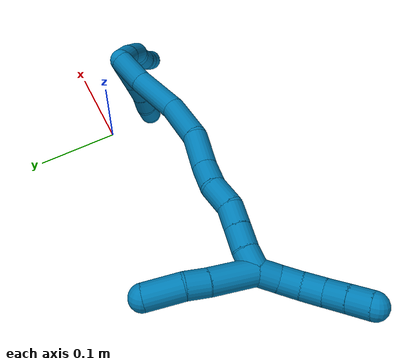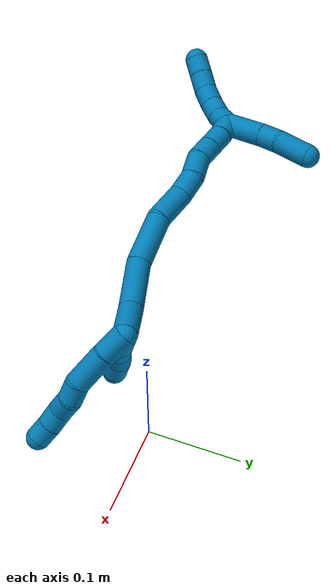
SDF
<sdf version="1.7">
 <world name="default">
  <model name="photoneo_s_sensor">
   <static>1</static>
   <pose>0 0 2 1.57079 1.57079 3.14159</pose>
   <link name="link">
    <inertial><mass>0.1</mass></inertial>
    <sensor name="sensor" type="depth">
     <update_rate>30</update_rate>
     <camera>
      <horizontal_fov>1.22</horizontal_fov>
      <image><width>1920</width><height>1200</height><format>B8G8R8</format></image>
      <clip><near>0.1</near><far>4</far></clip>
      <depth_camera><output>points</output></depth_camera>
     </camera>
     <plugin name="camera_plugin" filename="libgazebo_ros_depth_camera.so">
      <baseline>0.2</baseline>
      <alwaysOn>1</alwaysOn>
      <updateRate>0.0</updateRate>
      <cameraName>camera_ir</cameraName>
      <imageTopicName>/camera/color/image_raw</imageTopicName>
      <cameraInfoTopicName>/camera/color/camera_info</cameraInfoTopicName>
      <depthImageTopicName>/camera/depth/image_raw</depthImageTopicName>
      <depthImageCameraInfoTopicName>/camera/depth/camera_info</depthImageCameraInfoTopicName>
      <pointCloudTopicName>/camera/depth/points</pointCloudTopicName>
      <frameName>fr_optical</frameName>
      <pointCloudCutoff>0.1</pointCloudCutoff>
      <pointCloudCutoffMax>2.0</pointCloudCutoffMax>
      <distortionK1>0</distortionK1>
      <distortionK2>0</distortionK2>
      <distortionK3>0</distortionK3>
      <distortionT1>0</distortionT1>
      <distortionT2>0</distortionT2>
      <CxPrime>0</CxPrime>
      <Cx>0</Cx>
      <Cy>0</Cy>
      <focalLength>0</focalLength>
      <hackBaseline>0</hackBaseline>
     </plugin>
    </sensor>
   </link>
  </model>
  <model name="bin">
   <static>1</static>
   <link name="bottom">
    <collision name="collision-bottom">
     <pose>0 0 -0.01 0 -0 0</pose>
     <geometry><box><size>0.8 0.6 0.02</size></box></geometry>
     <surface>
      <friction><ode><mu>100</mu><mu2>100</mu2></ode></friction>
      <contact><collide_bitmask>65535</collide_bitmask></contact>
     </surface>
    </collision>
   </link>
   <link name="west_wall">
    <collision name="collision-west_wall">
     <pose>-0.41 0 0.1 0 -0 0</pose>
     <geometry><box><size>0.02 0.6 0.2</size></box></geometry>
     <surface>
      <friction><ode><mu>100</mu><mu2>100</mu2></ode></friction>
      <contact><collide_bitmask>65535</collide_bitmask></contact>
     </surface>
    </collision>
   </link>
   <link name="east_wall">
    <collision name="collision-east_wall">
     <pose>0.41 0 0.1 0 -0 0</pose>
     <geometry><box><size>0.02 0.6 0.2</size></box></geometry>
     <surface>
      <friction><ode><mu>100</mu><mu2>100</mu2></ode></friction>
      <contact><collide_bitmask>65535</collide_bitmask></contact>
     </surface>
    </collision>
   </link>
   <link name="south_wall">
    <collision name="collision-south_wall">
     <pose>0 -0.31 0.1 0 -0 0</pose>
     <geometry><box><size>0.8 0.02 0.2</size></box></geometry>
     <surface>
      <friction><ode><mu>100</mu><mu2>100</mu2></ode></friction>
      <contact><collide_bitmask>65535</collide_bitmask></contact>
     </surface>
    </collision>
   </link>
   <link name="north_wall">
    <collision name="collision-north_wall">
     <pose>0 0.31 0.1 0 -0 0</pose>
     <geometry><box><size>0.8 0.02 0.2</size></box></geometry>
     <surface>
      <friction><ode><mu>100</mu><mu2>100</mu2></ode></friction>
      <contact><collide_bitmask>65535</collide_bitmask></contact>
     </surface>
    </collision>
   </link>
  </model>
  <model name="9">
   <static>0</static>
   <link name="9">
    <collision name="collision-cylinder-e_1_2_8">
     <pose>0.012933 0.006372 -0.001248 -1.76422 1.10552 -1.28632</pose>
     <geometry><cylinder><radius>0.0125</radius><length>0.028944</length></cylinder></geometry>
     <surface>
      <friction><ode><mu>1.16</mu><mu2>1.16</mu2><slip1>0</slip1><slip2>0</slip2></ode></friction>
      <contact><ode><kp>1e+06</kp><kd>1</kd><max_vel>0</max_vel><min_depth>0.001</min_depth></ode></contact>
     </surface>
    </collision>
    <visual name="visual-cylinder-e_1_2_8">
     <pose>0.012933 0.006372 -0.001248 -1.76422 1.10552 -1.28632</pose>
     <geometry><cylinder><radius>0.0125</radius><length>0.028944</length></cylinder></geometry>
     <material><ambient>0 0.490196 0.709804 1</ambient></material>
    </visual>
    <collision name="collision-cylinder-e_2_8_9">
     <pose>0.04386 0.021778 -0.002117 -1.52882 1.10512 -1.06797</pose>
     <geometry><cylinder><radius>0.0125</radius><length>0.040275</length></cylinder></geometry>
     <surface>
      <friction><ode><mu>1.16</mu><mu2>1.16</mu2><slip1>0</slip1><slip2>0</slip2></ode></friction>
      <contact><ode><kp>1e+06</kp><kd>1</kd><max_vel>0</max_vel><min_depth>0.001</min_depth></ode></contact>
     </surface>
    </collision>
    <visual name="visual-cylinder-e_2_8_9">
     <pose>0.04386 0.021778 -0.002117 -1.52882 1.10512 -1.06797</pose>
     <geometry><cylinder><radius>0.0125</radius><length>0.040275</length></cylinder></geometry>
     <material><ambient>0 0.490196 0.709804 1</ambient></material>
    </visual>
    <collision name="collision-cylinder-e_3_9_10">
     <pose>0.071222 0.033883 0.001243 -0.800276 1.14234 -0.530781</pose>
     <geometry><cylinder><radius>0.0125</radius><length>0.020599</length></cylinder></geometry>
     <surface>
      <friction><ode><mu>1.16</mu><mu2>1.16</mu2><slip1>0</slip1><slip2>0</slip2></ode></friction>
      <contact><ode><kp>1e+06</kp><kd>1</kd><max_vel>0</max_vel><min_depth>0.001</min_depth></ode></contact>
     </surface>
    </collision>
    <visual name="visual-cylinder-e_3_9_10">
     <pose>0.071222 0.033883 0.001243 -0.800276 1.14234 -0.530781</pose>
     <geometry><cylinder><radius>0.0125</radius><length>0.020599</length></cylinder></geometry>
     <material><ambient>0 0.490196 0.709804 1</ambient></material>
    </visual>
    <collision name="collision-cylinder-e_4_10_11">
     <pose>0.087993 0.042816 0.007704 -1.03495 0.826482 -0.489194</pose>
     <geometry><cylinder><radius>0.0125</radius><length>0.020127</length></cylinder></geometry>
     <surface>
      <friction><ode><mu>1.16</mu><mu2>1.16</mu2><slip1>0</slip1><slip2>0</slip2></ode></friction>
      <contact><ode><kp>1e+06</kp><kd>1</kd><max_vel>0</max_vel><min_depth>0.001</min_depth></ode></contact>
     </surface>
    </collision>
    <visual name="visual-cylinder-e_4_10_11">
     <pose>0.087993 0.042816 0.007704 -1.03495 0.826482 -0.489194</pose>
     <geometry><cylinder><radius>0.0125</radius><length>0.020127</length></cylinder></geometry>
     <material><ambient>0 0.490196 0.709804 1</ambient></material>
    </visual>
    <collision name="collision-cylinder-e_5_11_12">
     <pose>0.104441 0.052766 0.012507 -1.25812 1.12739 -0.862233</pose>
     <geometry><cylinder><radius>0.0125</radius><length>0.020029</length></cylinder></geometry>
     <surface>
      <friction><ode><mu>1.16</mu><mu2>1.16</mu2><slip1>0</slip1><slip2>0</slip2></ode></friction>
      <contact><ode><kp>1e+06</kp><kd>1</kd><max_vel>0</max_vel><min_depth>0.001</min_depth></ode></contact>
     </surface>
    </collision>
    <visual name="visual-cylinder-e_5_11_12">
     <pose>0.104441 0.052766 0.012507 -1.25812 1.12739 -0.862233</pose>
     <geometry><cylinder><radius>0.0125</radius><length>0.020029</length></cylinder></geometry>
     <material><ambient>0 0.490196 0.709804 1</ambient></material>
    </visual>
    <collision name="collision-cylinder-e_6_12_6">
     <pose>0.122338 0.061452 0.014713 -1.3807 1.08423 -0.923228</pose>
     <geometry><cylinder><radius>0.0125</radius><length>0.020026</length></cylinder></geometry>
     <surface>
      <friction><ode><mu>1.16</mu><mu2>1.16</mu2><slip1>0</slip1><slip2>0</slip2></ode></friction>
      <contact><ode><kp>1e+06</kp><kd>1</kd><max_vel>0</max_vel><min_depth>0.001</min_depth></ode></contact>
     </surface>
    </collision>
    <visual name="visual-cylinder-e_6_12_6">
     <pose>0.122338 0.061452 0.014713 -1.3807 1.08423 -0.923228</pose>
     <geometry><cylinder><radius>0.0125</radius><length>0.020026</length></cylinder></geometry>
     <material><ambient>0 0.490196 0.709804 1</ambient></material>
    </visual>
    <collision name="collision-cylinder-e_1_2_13">
     <pose>0.007209 0.010288 0.013577 -0.648458 0.400367 -0.136175</pose>
     <geometry><cylinder><radius>0.0125</radius><length>0.036995</length></cylinder></geometry>
     <surface>
      <friction><ode><mu>1.16</mu><mu2>1.16</mu2><slip1>0</slip1><slip2>0</slip2></ode></friction>
      <contact><ode><kp>1e+06</kp><kd>1</kd><max_vel>0</max_vel><min_depth>0.001</min_depth></ode></contact>
     </surface>
    </collision>
    <visual name="visual-cylinder-e_1_2_13">
     <pose>0.007209 0.010288 0.013577 -0.648458 0.400367 -0.136175</pose>
     <geometry><cylinder><radius>0.0125</radius><length>0.036995</length></cylinder></geometry>
     <material><ambient>0 0.490196 0.709804 1</ambient></material>
    </visual>
    <collision name="collision-cylinder-e_2_13_14">
     <pose>0.018777 0.02666 0.035545 -0.627297 0.398073 -0.130663</pose>
     <geometry><cylinder><radius>0.0125</radius><length>0.022487</length></cylinder></geometry>
     <surface>
      <friction><ode><mu>1.16</mu><mu2>1.16</mu2><slip1>0</slip1><slip2>0</slip2></ode></friction>
      <contact><ode><kp>1e+06</kp><kd>1</kd><max_vel>0</max_vel><min_depth>0.001</min_depth></ode></contact>
     </surface>
    </collision>
    <visual name="visual-cylinder-e_2_13_14">
     <pose>0.018777 0.02666 0.035545 -0.627297 0.398073 -0.130663</pose>
     <geometry><cylinder><radius>0.0125</radius><length>0.022487</length></cylinder></geometry>
     <material><ambient>0 0.490196 0.709804 1</ambient></material>
    </visual>
    <collision name="collision-cylinder-e_3_14_15">
     <pose>0.027983 0.036701 0.051775 -0.467515 0.504362 -0.122552</pose>
     <geometry><cylinder><radius>0.0125</radius><length>0.020061</length></cylinder></geometry>
     <surface>
      <friction><ode><mu>1.16</mu><mu2>1.16</mu2><slip1>0</slip1><slip2>0</slip2></ode></friction>
      <contact><ode><kp>1e+06</kp><kd>1</kd><max_vel>0</max_vel><min_depth>0.001</min_depth></ode></contact>
     </surface>
    </collision>
    <visual name="visual-cylinder-e_3_14_15">
     <pose>0.027983 0.036701 0.051775 -0.467515 0.504362 -0.122552</pose>
     <geometry><cylinder><radius>0.0125</radius><length>0.020061</length></cylinder></geometry>
     <material><ambient>0 0.490196 0.709804 1</ambient></material>
    </visual>
    <collision name="collision-cylinder-e_4_15_5">
     <pose>0.039583 0.045335 0.06571 -0.654404 0.721105 -0.254548</pose>
     <geometry><cylinder><radius>0.0125</radius><length>0.020458</length></cylinder></geometry>
     <surface>
      <friction><ode><mu>1.16</mu><mu2>1.16</mu2><slip1>0</slip1><slip2>0</slip2></ode></friction>
      <contact><ode><kp>1e+06</kp><kd>1</kd><max_vel>0</max_vel><min_depth>0.001</min_depth></ode></contact>
     </surface>
    </collision>
    <visual name="visual-cylinder-e_4_15_5">
     <pose>0.039583 0.045335 0.06571 -0.654404 0.721105 -0.254548</pose>
     <geometry><cylinder><radius>0.0125</radius><length>0.020458</length></cylinder></geometry>
     <material><ambient>0 0.490196 0.709804 1</ambient></material>
    </visual>
    <collision name="collision-cylinder-e_1_2_16">
     <pose>-0.011307 0.009761 0.009789 -0.783999 -0.685566 0.292944</pose>
     <geometry><cylinder><radius>0.0125</radius><length>0.035717</length></cylinder></geometry>
     <surface>
      <friction><ode><mu>1.16</mu><mu2>1.16</mu2><slip1>0</slip1><slip2>0</slip2></ode></friction>
      <contact><ode><kp>1e+06</kp><kd>1</kd><max_vel>0</max_vel><min_depth>0.001</min_depth></ode></contact>
     </surface>
    </collision>
    <visual name="visual-cylinder-e_1_2_16">
     <pose>-0.011307 0.009761 0.009789 -0.783999 -0.685566 0.292944</pose>
     <geometry><cylinder><radius>0.0125</radius><length>0.035717</length></cylinder></geometry>
     <material><ambient>0 0.490196 0.709804 1</ambient></material>
    </visual>
    <collision name="collision-cylinder-e_2_16_17">
     <pose>-0.044575 0.033417 0.029948 -0.929599 -0.902488 0.476747</pose>
     <geometry><cylinder><radius>0.0125</radius><length>0.055963</length></cylinder></geometry>
     <surface>
      <friction><ode><mu>1.16</mu><mu2>1.16</mu2><slip1>0</slip1><slip2>0</slip2></ode></friction>
      <contact><ode><kp>1e+06</kp><kd>1</kd><max_vel>0</max_vel><min_depth>0.001</min_depth></ode></contact>
     </surface>
    </collision>
    <visual name="visual-cylinder-e_2_16_17">
     <pose>-0.044575 0.033417 0.029948 -0.929599 -0.902488 0.476747</pose>
     <geometry><cylinder><radius>0.0125</radius><length>0.055963</length></cylinder></geometry>
     <material><ambient>0 0.490196 0.709804 1</ambient></material>
    </visual>
    <collision name="collision-cylinder-e_3_17_18">
     <pose>-0.091221 0.052674 0.049131 -0.546685 -1.17501 0.369158</pose>
     <geometry><cylinder><radius>0.0125</radius><length>0.053505</length></cylinder></geometry>
     <surface>
      <friction><ode><mu>1.16</mu><mu2>1.16</mu2><slip1>0</slip1><slip2>0</slip2></ode></friction>
      <contact><ode><kp>1e+06</kp><kd>1</kd><max_vel>0</max_vel><min_depth>0.001</min_depth></ode></contact>
     </surface>
    </collision>
    <visual name="visual-cylinder-e_3_17_18">
     <pose>-0.091221 0.052674 0.049131 -0.546685 -1.17501 0.369158</pose>
     <geometry><cylinder><radius>0.0125</radius><length>0.053505</length></cylinder></geometry>
     <material><ambient>0 0.490196 0.709804 1</ambient></material>
    </visual>
    <collision name="collision-cylinder-e_4_18_19">
     <pose>-0.131473 0.059195 0.069126 -0.103231 -0.945238 0.052813</pose>
     <geometry><cylinder><radius>0.0125</radius><length>0.038408</length></cylinder></geometry>
     <surface>
      <friction><ode><mu>1.16</mu><mu2>1.16</mu2><slip1>0</slip1><slip2>0</slip2></ode></friction>
      <contact><ode><kp>1e+06</kp><kd>1</kd><max_vel>0</max_vel><min_depth>0.001</min_depth></ode></contact>
     </surface>
    </collision>
    <visual name="visual-cylinder-e_4_18_19">
     <pose>-0.131473 0.059195 0.069126 -0.103231 -0.945238 0.052813</pose>
     <geometry><cylinder><radius>0.0125</radius><length>0.038408</length></cylinder></geometry>
     <material><ambient>0 0.490196 0.709804 1</ambient></material>
    </visual>
    <collision name="collision-cylinder-e_5_19_20">
     <pose>-0.158253 0.061341 0.085992 -0.172148 -1.09582 0.105214</pose>
     <geometry><cylinder><radius>0.0125</radius><length>0.025217</length></cylinder></geometry>
     <surface>
      <friction><ode><mu>1.16</mu><mu2>1.16</mu2><slip1>0</slip1><slip2>0</slip2></ode></friction>
      <contact><ode><kp>1e+06</kp><kd>1</kd><max_vel>0</max_vel><min_depth>0.001</min_depth></ode></contact>
     </surface>
    </collision>
    <visual name="visual-cylinder-e_5_19_20">
     <pose>-0.158253 0.061341 0.085992 -0.172148 -1.09582 0.105214</pose>
     <geometry><cylinder><radius>0.0125</radius><length>0.025217</length></cylinder></geometry>
     <material><ambient>0 0.490196 0.709804 1</ambient></material>
    </visual>
    <collision name="collision-cylinder-e_6_20_21">
     <pose>-0.180529 0.067275 0.09725 -0.72546 -0.977871 0.398471</pose>
     <geometry><cylinder><radius>0.0125</radius><length>0.026681</length></cylinder></geometry>
     <surface>
      <friction><ode><mu>1.16</mu><mu2>1.16</mu2><slip1>0</slip1><slip2>0</slip2></ode></friction>
      <contact><ode><kp>1e+06</kp><kd>1</kd><max_vel>0</max_vel><min_depth>0.001</min_depth></ode></contact>
     </surface>
    </collision>
    <visual name="visual-cylinder-e_6_20_21">
     <pose>-0.180529 0.067275 0.09725 -0.72546 -0.977871 0.398471</pose>
     <geometry><cylinder><radius>0.0125</radius><length>0.026681</length></cylinder></geometry>
     <material><ambient>0 0.490196 0.709804 1</ambient></material>
    </visual>
    <collision name="collision-cylinder-e_7_21_22">
     <pose>-0.200114 0.073416 0.109662 -0.173089 -0.887455 0.082436</pose>
     <geometry><cylinder><radius>0.0125</radius><length>0.021978</length></cylinder></geometry>
     <surface>
      <friction><ode><mu>1.16</mu><mu2>1.16</mu2><slip1>0</slip1><slip2>0</slip2></ode></friction>
      <contact><ode><kp>1e+06</kp><kd>1</kd><max_vel>0</max_vel><min_depth>0.001</min_depth></ode></contact>
     </surface>
    </collision>
    <visual name="visual-cylinder-e_7_21_22">
     <pose>-0.200114 0.073416 0.109662 -0.173089 -0.887455 0.082436</pose>
     <geometry><cylinder><radius>0.0125</radius><length>0.021978</length></cylinder></geometry>
     <material><ambient>0 0.490196 0.709804 1</ambient></material>
    </visual>
    <collision name="collision-cylinder-e_8_22_23">
     <pose>-0.217071 0.075803 0.12341 -0.170762 -0.877017 0.080233</pose>
     <geometry><cylinder><radius>0.0125</radius><length>0.021942</length></cylinder></geometry>
     <surface>
      <friction><ode><mu>1.16</mu><mu2>1.16</mu2><slip1>0</slip1><slip2>0</slip2></ode></friction>
      <contact><ode><kp>1e+06</kp><kd>1</kd><max_vel>0</max_vel><min_depth>0.001</min_depth></ode></contact>
     </surface>
    </collision>
    <visual name="visual-cylinder-e_8_22_23">
     <pose>-0.217071 0.075803 0.12341 -0.170762 -0.877017 0.080233</pose>
     <geometry><cylinder><radius>0.0125</radius><length>0.021942</length></cylinder></geometry>
     <material><ambient>0 0.490196 0.709804 1</ambient></material>
    </visual>
    <collision name="collision-cylinder-e_9_23_1">
     <pose>-0.233267 0.079558 0.136583 -0.388566 -0.854045 0.178589</pose>
     <geometry><cylinder><radius>0.0125</radius><length>0.020589</length></cylinder></geometry>
     <surface>
      <friction><ode><mu>1.16</mu><mu2>1.16</mu2><slip1>0</slip1><slip2>0</slip2></ode></friction>
      <contact><ode><kp>1e+06</kp><kd>1</kd><max_vel>0</max_vel><min_depth>0.001</min_depth></ode></contact>
     </surface>
    </collision>
    <visual name="visual-cylinder-e_9_23_1">
     <pose>-0.233267 0.079558 0.136583 -0.388566 -0.854045 0.178589</pose>
     <geometry><cylinder><radius>0.0125</radius><length>0.020589</length></cylinder></geometry>
     <material><ambient>0 0.490196 0.709804 1</ambient></material>
    </visual>
    <collision name="collision-cylinder-e_1_1_24">
     <pose>-0.244319 0.091307 0.145025 -1.33743 -0.335288 0.265864</pose>
     <geometry><cylinder><radius>0.0125</radius><length>0.02</length></cylinder></geometry>
     <surface>
      <friction><ode><mu>1.16</mu><mu2>1.16</mu2><slip1>0</slip1><slip2>0</slip2></ode></friction>
      <contact><ode><kp>1e+06</kp><kd>1</kd><max_vel>0</max_vel><min_depth>0.001</min_depth></ode></contact>
     </surface>
    </collision>
    <visual name="visual-cylinder-e_1_1_24">
     <pose>-0.244319 0.091307 0.145025 -1.33743 -0.335288 0.265864</pose>
     <geometry><cylinder><radius>0.0125</radius><length>0.02</length></cylinder></geometry>
     <material><ambient>0 0.490196 0.709804 1</ambient></material>
    </visual>
    <collision name="collision-cylinder-e_2_24_25">
     <pose>-0.253109 0.108797 0.148117 -1.46188 -0.582312 0.524979</pose>
     <geometry><cylinder><radius>0.0125</radius><length>0.02</length></cylinder></geometry>
     <surface>
      <friction><ode><mu>1.16</mu><mu2>1.16</mu2><slip1>0</slip1><slip2>0</slip2></ode></friction>
      <contact><ode><kp>1e+06</kp><kd>1</kd><max_vel>0</max_vel><min_depth>0.001</min_depth></ode></contact>
     </surface>
    </collision>
    <visual name="visual-cylinder-e_2_24_25">
     <pose>-0.253109 0.108797 0.148117 -1.46188 -0.582312 0.524979</pose>
     <geometry><cylinder><radius>0.0125</radius><length>0.02</length></cylinder></geometry>
     <material><ambient>0 0.490196 0.709804 1</ambient></material>
    </visual>
    <collision name="collision-cylinder-e_3_25_26">
     <pose>-0.265077 0.124725 0.149038 -1.56902 -0.703523 0.702378</pose>
     <geometry><cylinder><radius>0.0125</radius><length>0.02</length></cylinder></geometry>
     <surface>
      <friction><ode><mu>1.16</mu><mu2>1.16</mu2><slip1>0</slip1><slip2>0</slip2></ode></friction>
      <contact><ode><kp>1e+06</kp><kd>1</kd><max_vel>0</max_vel><min_depth>0.001</min_depth></ode></contact>
     </surface>
    </collision>
    <visual name="visual-cylinder-e_3_25_26">
     <pose>-0.265077 0.124725 0.149038 -1.56902 -0.703523 0.702378</pose>
     <geometry><cylinder><radius>0.0125</radius><length>0.02</length></cylinder></geometry>
     <material><ambient>0 0.490196 0.709804 1</ambient></material>
    </visual>
    <collision name="collision-cylinder-e_4_26_27">
     <pose>-0.279259 0.138615 0.147925 -1.74876 -0.880791 1.02643</pose>
     <geometry><cylinder><radius>0.0125</radius><length>0.02</length></cylinder></geometry>
     <surface>
      <friction><ode><mu>1.16</mu><mu2>1.16</mu2><slip1>0</slip1><slip2>0</slip2></ode></friction>
      <contact><ode><kp>1e+06</kp><kd>1</kd><max_vel>0</max_vel><min_depth>0.001</min_depth></ode></contact>
     </surface>
    </collision>
    <visual name="visual-cylinder-e_4_26_27">
     <pose>-0.279259 0.138615 0.147925 -1.74876 -0.880791 1.02643</pose>
     <geometry><cylinder><radius>0.0125</radius><length>0.02</length></cylinder></geometry>
     <material><ambient>0 0.490196 0.709804 1</ambient></material>
    </visual>
    <collision name="collision-cylinder-e_5_27_4">
     <pose>-0.29463 0.151236 0.145823 -1.72305 -0.872315 0.995013</pose>
     <geometry><cylinder><radius>0.0125</radius><length>0.02</length></cylinder></geometry>
     <surface>
      <friction><ode><mu>1.16</mu><mu2>1.16</mu2><slip1>0</slip1><slip2>0</slip2></ode></friction>
      <contact><ode><kp>1e+06</kp><kd>1</kd><max_vel>0</max_vel><min_depth>0.001</min_depth></ode></contact>
     </surface>
    </collision>
    <visual name="visual-cylinder-e_5_27_4">
     <pose>-0.29463 0.151236 0.145823 -1.72305 -0.872315 0.995013</pose>
     <geometry><cylinder><radius>0.0125</radius><length>0.02</length></cylinder></geometry>
     <material><ambient>0 0.490196 0.709804 1</ambient></material>
    </visual>
    <collision name="collision-cylinder-e_1_1_28">
     <pose>-0.241184 0.060832 0.146502 1.40048 -0.007183 -0.006053</pose>
     <geometry><cylinder><radius>0.0125</radius><length>0.043202</length></cylinder></geometry>
     <surface>
      <friction><ode><mu>1.16</mu><mu2>1.16</mu2><slip1>0</slip1><slip2>0</slip2></ode></friction>
      <contact><ode><kp>1e+06</kp><kd>1</kd><max_vel>0</max_vel><min_depth>0.001</min_depth></ode></contact>
     </surface>
    </collision>
    <visual name="visual-cylinder-e_1_1_28">
     <pose>-0.241184 0.060832 0.146502 1.40048 -0.007183 -0.006053</pose>
     <geometry><cylinder><radius>0.0125</radius><length>0.043202</length></cylinder></geometry>
     <material><ambient>0 0.490196 0.709804 1</ambient></material>
    </visual>
    <collision name="collision-cylinder-e_2_28_29">
     <pose>-0.240676 0.02926 0.151623 1.42985 0.063767 0.055362</pose>
     <geometry><cylinder><radius>0.0125</radius><length>0.020816</length></cylinder></geometry>
     <surface>
      <friction><ode><mu>1.16</mu><mu2>1.16</mu2><slip1>0</slip1><slip2>0</slip2></ode></friction>
      <contact><ode><kp>1e+06</kp><kd>1</kd><max_vel>0</max_vel><min_depth>0.001</min_depth></ode></contact>
     </surface>
    </collision>
    <visual name="visual-cylinder-e_2_28_29">
     <pose>-0.240676 0.02926 0.151623 1.42985 0.063767 0.055362</pose>
     <geometry><cylinder><radius>0.0125</radius><length>0.020816</length></cylinder></geometry>
     <material><ambient>0 0.490196 0.709804 1</ambient></material>
    </visual>
    <collision name="collision-cylinder-e_3_29_3">
     <pose>-0.237782 0.001971 0.158517 1.26141 0.124266 0.090793</pose>
     <geometry><cylinder><radius>0.0125</radius><length>0.035982</length></cylinder></geometry>
     <surface>
      <friction><ode><mu>1.16</mu><mu2>1.16</mu2><slip1>0</slip1><slip2>0</slip2></ode></friction>
      <contact><ode><kp>1e+06</kp><kd>1</kd><max_vel>0</max_vel><min_depth>0.001</min_depth></ode></contact>
     </surface>
    </collision>
    <visual name="visual-cylinder-e_3_29_3">
     <pose>-0.237782 0.001971 0.158517 1.26141 0.124266 0.090793</pose>
     <geometry><cylinder><radius>0.0125</radius><length>0.035982</length></cylinder></geometry>
     <material><ambient>0 0.490196 0.709804 1</ambient></material>
    </visual>
    <collision name="collision-sphere-3">
     <pose>-0.235553 -0.015033 0.163953 0 -0 0</pose>
     <geometry><sphere><radius>0.0125</radius></sphere></geometry>
     <surface>
      <friction><ode><mu>1.16</mu><mu2>1.16</mu2><slip1>0</slip1><slip2>0</slip2></ode></friction>
      <contact><ode><kp>1e+06</kp><kd>1</kd><max_vel>0</max_vel><min_depth>0.001</min_depth></ode></contact>
     </surface>
    </collision>
    <visual name="visual-sphere-3">
     <pose>-0.235553 -0.015033 0.163953 0 -0 0</pose>
     <geometry><sphere><radius>0.0125</radius></sphere></geometry>
     <material><ambient>0 0.490196 0.709804 1</ambient></material>
    </visual>
    <collision name="collision-sphere-29">
     <pose>-0.240012 0.018976 0.153082 0 -0 0</pose>
     <geometry><sphere><radius>0.0125</radius></sphere></geometry>
     <surface>
      <friction><ode><mu>1.16</mu><mu2>1.16</mu2><slip1>0</slip1><slip2>0</slip2></ode></friction>
      <contact><ode><kp>1e+06</kp><kd>1</kd><max_vel>0</max_vel><min_depth>0.001</min_depth></ode></contact>
     </surface>
    </collision>
    <visual name="visual-sphere-29">
     <pose>-0.240012 0.018976 0.153082 0 -0 0</pose>
     <geometry><sphere><radius>0.0125</radius></sphere></geometry>
     <material><ambient>0 0.490196 0.709804 1</ambient></material>
    </visual>
    <collision name="collision-sphere-28">
     <pose>-0.241339 0.039543 0.150163 0 -0 0</pose>
     <geometry><sphere><radius>0.0125</radius></sphere></geometry>
     <surface>
      <friction><ode><mu>1.16</mu><mu2>1.16</mu2><slip1>0</slip1><slip2>0</slip2></ode></friction>
      <contact><ode><kp>1e+06</kp><kd>1</kd><max_vel>0</max_vel><min_depth>0.001</min_depth></ode></contact>
     </surface>
    </collision>
    <visual name="visual-sphere-28">
     <pose>-0.241339 0.039543 0.150163 0 -0 0</pose>
     <geometry><sphere><radius>0.0125</radius></sphere></geometry>
     <material><ambient>0 0.490196 0.709804 1</ambient></material>
    </visual>
    <collision name="collision-sphere-4">
     <pose>-0.302288 0.157592 0.144847 0 -0 0</pose>
     <geometry><sphere><radius>0.0125</radius></sphere></geometry>
     <surface>
      <friction><ode><mu>1.16</mu><mu2>1.16</mu2><slip1>0</slip1><slip2>0</slip2></ode></friction>
      <contact><ode><kp>1e+06</kp><kd>1</kd><max_vel>0</max_vel><min_depth>0.001</min_depth></ode></contact>
     </surface>
    </collision>
    <visual name="visual-sphere-4">
     <pose>-0.302288 0.157592 0.144847 0 -0 0</pose>
     <geometry><sphere><radius>0.0125</radius></sphere></geometry>
     <material><ambient>0 0.490196 0.709804 1</ambient></material>
    </visual>
    <collision name="collision-sphere-27">
     <pose>-0.286971 0.14488 0.146798 0 -0 0</pose>
     <geometry><sphere><radius>0.0125</radius></sphere></geometry>
     <surface>
      <friction><ode><mu>1.16</mu><mu2>1.16</mu2><slip1>0</slip1><slip2>0</slip2></ode></friction>
      <contact><ode><kp>1e+06</kp><kd>1</kd><max_vel>0</max_vel><min_depth>0.001</min_depth></ode></contact>
     </surface>
    </collision>
    <visual name="visual-sphere-27">
     <pose>-0.286971 0.14488 0.146798 0 -0 0</pose>
     <geometry><sphere><radius>0.0125</radius></sphere></geometry>
     <material><ambient>0 0.490196 0.709804 1</ambient></material>
    </visual>
    <collision name="collision-sphere-26">
     <pose>-0.271547 0.13235 0.149052 0 -0 0</pose>
     <geometry><sphere><radius>0.0125</radius></sphere></geometry>
     <surface>
      <friction><ode><mu>1.16</mu><mu2>1.16</mu2><slip1>0</slip1><slip2>0</slip2></ode></friction>
      <contact><ode><kp>1e+06</kp><kd>1</kd><max_vel>0</max_vel><min_depth>0.001</min_depth></ode></contact>
     </surface>
    </collision>
    <visual name="visual-sphere-26">
     <pose>-0.271547 0.13235 0.149052 0 -0 0</pose>
     <geometry><sphere><radius>0.0125</radius></sphere></geometry>
     <material><ambient>0 0.490196 0.709804 1</ambient></material>
    </visual>
    <collision name="collision-sphere-25">
     <pose>-0.258608 0.117099 0.149025 0 -0 0</pose>
     <geometry><sphere><radius>0.0125</radius></sphere></geometry>
     <surface>
      <friction><ode><mu>1.16</mu><mu2>1.16</mu2><slip1>0</slip1><slip2>0</slip2></ode></friction>
      <contact><ode><kp>1e+06</kp><kd>1</kd><max_vel>0</max_vel><min_depth>0.001</min_depth></ode></contact>
     </surface>
    </collision>
    <visual name="visual-sphere-25">
     <pose>-0.258608 0.117099 0.149025 0 -0 0</pose>
     <geometry><sphere><radius>0.0125</radius></sphere></geometry>
     <material><ambient>0 0.490196 0.709804 1</ambient></material>
    </visual>
    <collision name="collision-sphere-24">
     <pose>-0.247609 0.100494 0.147209 0 -0 0</pose>
     <geometry><sphere><radius>0.0125</radius></sphere></geometry>
     <surface>
      <friction><ode><mu>1.16</mu><mu2>1.16</mu2><slip1>0</slip1><slip2>0</slip2></ode></friction>
      <contact><ode><kp>1e+06</kp><kd>1</kd><max_vel>0</max_vel><min_depth>0.001</min_depth></ode></contact>
     </surface>
    </collision>
    <visual name="visual-sphere-24">
     <pose>-0.247609 0.100494 0.147209 0 -0 0</pose>
     <geometry><sphere><radius>0.0125</radius></sphere></geometry>
     <material><ambient>0 0.490196 0.709804 1</ambient></material>
    </visual>
    <collision name="collision-sphere-1">
     <pose>-0.241028 0.08212 0.142841 0 -0 0</pose>
     <geometry><sphere><radius>0.0125</radius></sphere></geometry>
     <surface>
      <friction><ode><mu>1.16</mu><mu2>1.16</mu2><slip1>0</slip1><slip2>0</slip2></ode></friction>
      <contact><ode><kp>1e+06</kp><kd>1</kd><max_vel>0</max_vel><min_depth>0.001</min_depth></ode></contact>
     </surface>
    </collision>
    <visual name="visual-sphere-1">
     <pose>-0.241028 0.08212 0.142841 0 -0 0</pose>
     <geometry><sphere><radius>0.0125</radius></sphere></geometry>
     <material><ambient>0 0.490196 0.709804 1</ambient></material>
    </visual>
    <collision name="collision-sphere-23">
     <pose>-0.225505 0.076995 0.130324 0 -0 0</pose>
     <geometry><sphere><radius>0.0125</radius></sphere></geometry>
     <surface>
      <friction><ode><mu>1.16</mu><mu2>1.16</mu2><slip1>0</slip1><slip2>0</slip2></ode></friction>
      <contact><ode><kp>1e+06</kp><kd>1</kd><max_vel>0</max_vel><min_depth>0.001</min_depth></ode></contact>
     </surface>
    </collision>
    <visual name="visual-sphere-23">
     <pose>-0.225505 0.076995 0.130324 0 -0 0</pose>
     <geometry><sphere><radius>0.0125</radius></sphere></geometry>
     <material><ambient>0 0.490196 0.709804 1</ambient></material>
    </visual>
    <collision name="collision-sphere-22">
     <pose>-0.208636 0.074611 0.116497 0 -0 0</pose>
     <geometry><sphere><radius>0.0125</radius></sphere></geometry>
     <surface>
      <friction><ode><mu>1.16</mu><mu2>1.16</mu2><slip1>0</slip1><slip2>0</slip2></ode></friction>
      <contact><ode><kp>1e+06</kp><kd>1</kd><max_vel>0</max_vel><min_depth>0.001</min_depth></ode></contact>
     </surface>
    </collision>
    <visual name="visual-sphere-22">
     <pose>-0.208636 0.074611 0.116497 0 -0 0</pose>
     <geometry><sphere><radius>0.0125</radius></sphere></geometry>
     <material><ambient>0 0.490196 0.709804 1</ambient></material>
    </visual>
    <collision name="collision-sphere-21">
     <pose>-0.191593 0.072221 0.102828 0 -0 0</pose>
     <geometry><sphere><radius>0.0125</radius></sphere></geometry>
     <surface>
      <friction><ode><mu>1.16</mu><mu2>1.16</mu2><slip1>0</slip1><slip2>0</slip2></ode></friction>
      <contact><ode><kp>1e+06</kp><kd>1</kd><max_vel>0</max_vel><min_depth>0.001</min_depth></ode></contact>
     </surface>
    </collision>
    <visual name="visual-sphere-21">
     <pose>-0.191593 0.072221 0.102828 0 -0 0</pose>
     <geometry><sphere><radius>0.0125</radius></sphere></geometry>
     <material><ambient>0 0.490196 0.709804 1</ambient></material>
    </visual>
    <collision name="collision-sphere-12">
     <pose>0.113487 0.056854 0.013828 0 -0 0</pose>
     <geometry><sphere><radius>0.0125</radius></sphere></geometry>
     <surface>
      <friction><ode><mu>1.16</mu><mu2>1.16</mu2><slip1>0</slip1><slip2>0</slip2></ode></friction>
      <contact><ode><kp>1e+06</kp><kd>1</kd><max_vel>0</max_vel><min_depth>0.001</min_depth></ode></contact>
     </surface>
    </collision>
    <visual name="visual-sphere-12">
     <pose>0.113487 0.056854 0.013828 0 -0 0</pose>
     <geometry><sphere><radius>0.0125</radius></sphere></geometry>
     <material><ambient>0 0.490196 0.709804 1</ambient></material>
    </visual>
    <collision name="collision-sphere-11">
     <pose>0.095395 0.048678 0.011185 0 -0 0</pose>
     <geometry><sphere><radius>0.0125</radius></sphere></geometry>
     <surface>
      <friction><ode><mu>1.16</mu><mu2>1.16</mu2><slip1>0</slip1><slip2>0</slip2></ode></friction>
      <contact><ode><kp>1e+06</kp><kd>1</kd><max_vel>0</max_vel><min_depth>0.001</min_depth></ode></contact>
     </surface>
    </collision>
    <visual name="visual-sphere-11">
     <pose>0.095395 0.048678 0.011185 0 -0 0</pose>
     <geometry><sphere><radius>0.0125</radius></sphere></geometry>
     <material><ambient>0 0.490196 0.709804 1</ambient></material>
    </visual>
    <collision name="collision-sphere-10">
     <pose>0.080591 0.036954 0.004223 0 -0 0</pose>
     <geometry><sphere><radius>0.0125</radius></sphere></geometry>
     <surface>
      <friction><ode><mu>1.16</mu><mu2>1.16</mu2><slip1>0</slip1><slip2>0</slip2></ode></friction>
      <contact><ode><kp>1e+06</kp><kd>1</kd><max_vel>0</max_vel><min_depth>0.001</min_depth></ode></contact>
     </surface>
    </collision>
    <visual name="visual-sphere-10">
     <pose>0.080591 0.036954 0.004223 0 -0 0</pose>
     <geometry><sphere><radius>0.0125</radius></sphere></geometry>
     <material><ambient>0 0.490196 0.709804 1</ambient></material>
    </visual>
    <collision name="collision-sphere-9">
     <pose>0.061854 0.030813 -0.001737 0 -0 0</pose>
     <geometry><sphere><radius>0.0125</radius></sphere></geometry>
     <surface>
      <friction><ode><mu>1.16</mu><mu2>1.16</mu2><slip1>0</slip1><slip2>0</slip2></ode></friction>
      <contact><ode><kp>1e+06</kp><kd>1</kd><max_vel>0</max_vel><min_depth>0.001</min_depth></ode></contact>
     </surface>
    </collision>
    <visual name="visual-sphere-9">
     <pose>0.061854 0.030813 -0.001737 0 -0 0</pose>
     <geometry><sphere><radius>0.0125</radius></sphere></geometry>
     <material><ambient>0 0.490196 0.709804 1</ambient></material>
    </visual>
    <collision name="collision-sphere-2">
     <geometry><sphere><radius>0.0125</radius></sphere></geometry>
     <surface>
      <friction><ode><mu>1.16</mu><mu2>1.16</mu2><slip1>0</slip1><slip2>0</slip2></ode></friction>
      <contact><ode><kp>1e+06</kp><kd>1</kd><max_vel>0</max_vel><min_depth>0.001</min_depth></ode></contact>
     </surface>
    </collision>
    <visual name="visual-sphere-2">
     <geometry><sphere><radius>0.0125</radius></sphere></geometry>
     <material><ambient>0 0.490196 0.709804 1</ambient></material>
    </visual>
    <collision name="collision-sphere-19">
     <pose>-0.14704 0.060354 0.080311 0 -0 0</pose>
     <geometry><sphere><radius>0.0125</radius></sphere></geometry>
     <surface>
      <friction><ode><mu>1.16</mu><mu2>1.16</mu2><slip1>0</slip1><slip2>0</slip2></ode></friction>
      <contact><ode><kp>1e+06</kp><kd>1</kd><max_vel>0</max_vel><min_depth>0.001</min_depth></ode></contact>
     </surface>
    </collision>
    <visual name="visual-sphere-19">
     <pose>-0.14704 0.060354 0.080311 0 -0 0</pose>
     <geometry><sphere><radius>0.0125</radius></sphere></geometry>
     <material><ambient>0 0.490196 0.709804 1</ambient></material>
    </visual>
    <collision name="collision-sphere-8">
     <pose>0.025867 0.012744 -0.002496 0 -0 0</pose>
     <geometry><sphere><radius>0.0125</radius></sphere></geometry>
     <surface>
      <friction><ode><mu>1.16</mu><mu2>1.16</mu2><slip1>0</slip1><slip2>0</slip2></ode></friction>
      <contact><ode><kp>1e+06</kp><kd>1</kd><max_vel>0</max_vel><min_depth>0.001</min_depth></ode></contact>
     </surface>
    </collision>
    <visual name="visual-sphere-8">
     <pose>0.025867 0.012744 -0.002496 0 -0 0</pose>
     <geometry><sphere><radius>0.0125</radius></sphere></geometry>
     <material><ambient>0 0.490196 0.709804 1</ambient></material>
    </visual>
    <collision name="collision-sphere-6">
     <pose>0.131189 0.066049 0.015598 0 -0 0</pose>
     <geometry><sphere><radius>0.0125</radius></sphere></geometry>
     <surface>
      <friction><ode><mu>1.16</mu><mu2>1.16</mu2><slip1>0</slip1><slip2>0</slip2></ode></friction>
      <contact><ode><kp>1e+06</kp><kd>1</kd><max_vel>0</max_vel><min_depth>0.001</min_depth></ode></contact>
     </surface>
    </collision>
    <visual name="visual-sphere-6">
     <pose>0.131189 0.066049 0.015598 0 -0 0</pose>
     <geometry><sphere><radius>0.0125</radius></sphere></geometry>
     <material><ambient>0 0.490196 0.709804 1</ambient></material>
    </visual>
    <collision name="collision-sphere-13">
     <pose>0.014419 0.020576 0.027154 0 -0 0</pose>
     <geometry><sphere><radius>0.0125</radius></sphere></geometry>
     <surface>
      <friction><ode><mu>1.16</mu><mu2>1.16</mu2><slip1>0</slip1><slip2>0</slip2></ode></friction>
      <contact><ode><kp>1e+06</kp><kd>1</kd><max_vel>0</max_vel><min_depth>0.001</min_depth></ode></contact>
     </surface>
    </collision>
    <visual name="visual-sphere-13">
     <pose>0.014419 0.020576 0.027154 0 -0 0</pose>
     <geometry><sphere><radius>0.0125</radius></sphere></geometry>
     <material><ambient>0 0.490196 0.709804 1</ambient></material>
    </visual>
    <collision name="collision-sphere-14">
     <pose>0.023136 0.032743 0.043936 0 -0 0</pose>
     <geometry><sphere><radius>0.0125</radius></sphere></geometry>
     <surface>
      <friction><ode><mu>1.16</mu><mu2>1.16</mu2><slip1>0</slip1><slip2>0</slip2></ode></friction>
      <contact><ode><kp>1e+06</kp><kd>1</kd><max_vel>0</max_vel><min_depth>0.001</min_depth></ode></contact>
     </surface>
    </collision>
    <visual name="visual-sphere-14">
     <pose>0.023136 0.032743 0.043936 0 -0 0</pose>
     <geometry><sphere><radius>0.0125</radius></sphere></geometry>
     <material><ambient>0 0.490196 0.709804 1</ambient></material>
    </visual>
    <collision name="collision-sphere-15">
     <pose>0.03283 0.040658 0.059614 0 -0 0</pose>
     <geometry><sphere><radius>0.0125</radius></sphere></geometry>
     <surface>
      <friction><ode><mu>1.16</mu><mu2>1.16</mu2><slip1>0</slip1><slip2>0</slip2></ode></friction>
      <contact><ode><kp>1e+06</kp><kd>1</kd><max_vel>0</max_vel><min_depth>0.001</min_depth></ode></contact>
     </surface>
    </collision>
    <visual name="visual-sphere-15">
     <pose>0.03283 0.040658 0.059614 0 -0 0</pose>
     <geometry><sphere><radius>0.0125</radius></sphere></geometry>
     <material><ambient>0 0.490196 0.709804 1</ambient></material>
    </visual>
    <collision name="collision-sphere-5">
     <pose>0.046337 0.050011 0.071805 0 -0 0</pose>
     <geometry><sphere><radius>0.0125</radius></sphere></geometry>
     <surface>
      <friction><ode><mu>1.16</mu><mu2>1.16</mu2><slip1>0</slip1><slip2>0</slip2></ode></friction>
      <contact><ode><kp>1e+06</kp><kd>1</kd><max_vel>0</max_vel><min_depth>0.001</min_depth></ode></contact>
     </surface>
    </collision>
    <visual name="visual-sphere-5">
     <pose>0.046337 0.050011 0.071805 0 -0 0</pose>
     <geometry><sphere><radius>0.0125</radius></sphere></geometry>
     <material><ambient>0 0.490196 0.709804 1</ambient></material>
    </visual>
    <collision name="collision-sphere-16">
     <pose>-0.022613 0.019522 0.019577 0 -0 0</pose>
     <geometry><sphere><radius>0.0125</radius></sphere></geometry>
     <surface>
      <friction><ode><mu>1.16</mu><mu2>1.16</mu2><slip1>0</slip1><slip2>0</slip2></ode></friction>
      <contact><ode><kp>1e+06</kp><kd>1</kd><max_vel>0</max_vel><min_depth>0.001</min_depth></ode></contact>
     </surface>
    </collision>
    <visual name="visual-sphere-16">
     <pose>-0.022613 0.019522 0.019577 0 -0 0</pose>
     <geometry><sphere><radius>0.0125</radius></sphere></geometry>
     <material><ambient>0 0.490196 0.709804 1</ambient></material>
    </visual>
    <collision name="collision-sphere-17">
     <pose>-0.066537 0.047312 0.04032 0 -0 0</pose>
     <geometry><sphere><radius>0.0125</radius></sphere></geometry>
     <surface>
      <friction><ode><mu>1.16</mu><mu2>1.16</mu2><slip1>0</slip1><slip2>0</slip2></ode></friction>
      <contact><ode><kp>1e+06</kp><kd>1</kd><max_vel>0</max_vel><min_depth>0.001</min_depth></ode></contact>
     </surface>
    </collision>
    <visual name="visual-sphere-17">
     <pose>-0.066537 0.047312 0.04032 0 -0 0</pose>
     <geometry><sphere><radius>0.0125</radius></sphere></geometry>
     <material><ambient>0 0.490196 0.709804 1</ambient></material>
    </visual>
    <collision name="collision-sphere-18">
     <pose>-0.115905 0.058036 0.057941 0 -0 0</pose>
     <geometry><sphere><radius>0.0125</radius></sphere></geometry>
     <surface>
      <friction><ode><mu>1.16</mu><mu2>1.16</mu2><slip1>0</slip1><slip2>0</slip2></ode></friction>
      <contact><ode><kp>1e+06</kp><kd>1</kd><max_vel>0</max_vel><min_depth>0.001</min_depth></ode></contact>
     </surface>
    </collision>
    <visual name="visual-sphere-18">
     <pose>-0.115905 0.058036 0.057941 0 -0 0</pose>
     <geometry><sphere><radius>0.0125</radius></sphere></geometry>
     <material><ambient>0 0.490196 0.709804 1</ambient></material>
    </visual>
    <collision name="collision-sphere-20">
     <pose>-0.169466 0.062329 0.091673 0 -0 0</pose>
     <geometry><sphere><radius>0.0125</radius></sphere></geometry>
     <surface>
      <friction><ode><mu>1.16</mu><mu2>1.16</mu2><slip1>0</slip1><slip2>0</slip2></ode></friction>
      <contact><ode><kp>1e+06</kp><kd>1</kd><max_vel>0</max_vel><min_depth>0.001</min_depth></ode></contact>
     </surface>
    </collision>
    <visual name="visual-sphere-20">
     <pose>-0.169466 0.062329 0.091673 0 -0 0</pose>
     <geometry><sphere><radius>0.0125</radius></sphere></geometry>
     <material><ambient>0 0.490196 0.709804 1</ambient></material>
    </visual>
    <inertial>
     <pose>-0.09911 0.051629 0.072266 0 -0 0</pose>
     <mass>0.75</mass>
     <inertia><ixx>5.7e-05</ixx><ixy>0</ixy><ixz>0</ixz><iyy>9.6e-05</iyy><iyz>0</iyz><izz>2.8e-05</izz></inertia>
    </inertial>
   </link>
   <pose>-0.001779 -0.022245 0.144486 -2.84421 0.70368 -0.124832</pose>
  </model>
 </world>
</sdf>
